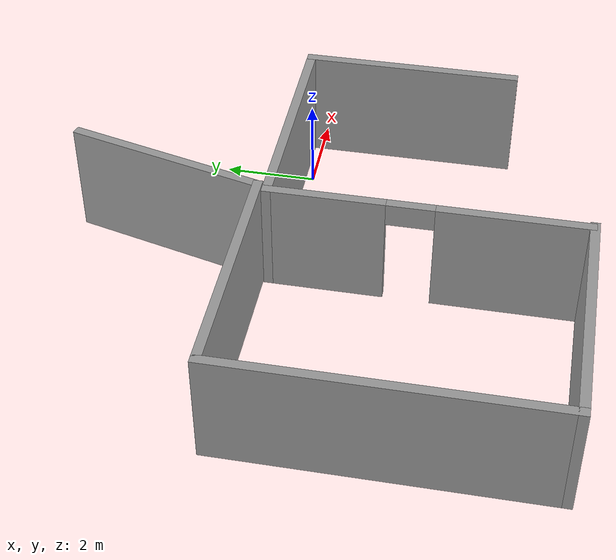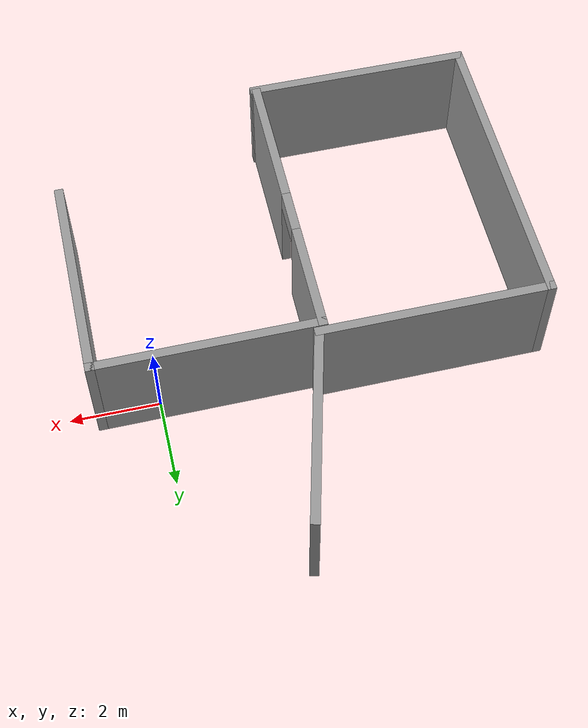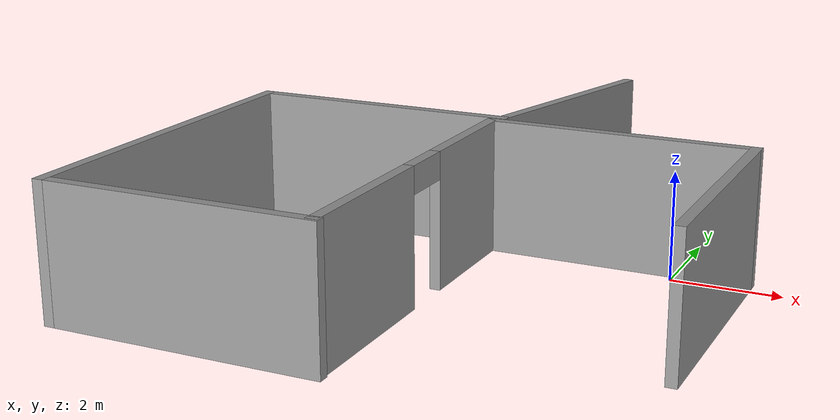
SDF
<?xml version='1.0'?>
<sdf version='1.4'>
  <model name='Test'>
    <link name='Wall_0'>
      <collision name='Wall_0_Collision'>
        <geometry>
          <box>
            <size>4.79304 0.2 2.5</size>
          </box>
        </geometry>
        <pose>0 0 1.25 0 -0 0</pose>
      </collision>
      <visual name='Wall_0_Visual'>
        <pose>0 0 1.25 0 -0 0</pose>
        <geometry>
          <box>
            <size>4.79304 0.2 2.5</size>
          </box>
        </geometry>
        <material>
          <script>
            <uri>file://media/materials/scripts/gazebo.material</uri>
            <name>Gazebo/Grey</name>
          </script>
        </material>
      </visual>
      <velocity_decay>
        <linear>0</linear>
        <angular>0</angular>
      </velocity_decay>
      <pose>1.31398 -2.03485 0 0 -0 1.5708</pose>
    </link>
    <link name='Wall_1'>
      <collision name='Wall_1_Collision'>
        <geometry>
          <box>
            <size>5.08201 0.2 2.5</size>
          </box>
        </geometry>
        <pose>0 0 1.25 0 -0 0</pose>
      </collision>
      <visual name='Wall_1_Visual'>
        <pose>0 0 1.25 0 -0 0</pose>
        <geometry>
          <box>
            <size>5.08201 0.2 2.5</size>
          </box>
        </geometry>
        <material>
          <script>
            <uri>file://media/materials/scripts/gazebo.material</uri>
            <name>Gazebo/Grey</name>
          </script>
        </material>
      </visual>
      <velocity_decay>
        <linear>0</linear>
        <angular>0</angular>
      </velocity_decay>
      <pose>-1.12703 0.26167 0 0 -0 3.14159</pose>
    </link>
    <link name='Wall_2'>
      <pose>-3.56803 -3.00427 0 0 0 -1.5708</pose>
      <visual name='Wall_2_Visual_0'>
        <pose>-2.09056 0 1.25 0 -0 0</pose>
        <geometry>
          <box>
            <size>2.55075 0.2 2.5</size>
          </box>
        </geometry>
        <material>
          <script>
            <uri>file://media/materials/scripts/gazebo.material</uri>
            <name>Gazebo/Grey</name>
          </script>
        </material>
      </visual>
      <collision name='Wall_2_Collision_0'>
        <geometry>
          <box>
            <size>2.55075 0.2 2.5</size>
          </box>
        </geometry>
        <pose>-2.09056 0 1.25 0 -0 0</pose>
      </collision>
      <visual name='Wall_2_Visual_1'>
        <pose>1.77538 0 1.25 0 -0 0</pose>
        <geometry>
          <box>
            <size>3.18113 0.2 2.5</size>
          </box>
        </geometry>
        <material>
          <script>
            <uri>file://media/materials/scripts/gazebo.material</uri>
            <name>Gazebo/Grey</name>
          </script>
        </material>
      </visual>
      <collision name='Wall_2_Collision_1'>
        <geometry>
          <box>
            <size>3.18113 0.2 2.5</size>
          </box>
        </geometry>
        <pose>1.77538 0 1.25 0 -0 0</pose>
      </collision>
      <visual name='Wall_2_Visual_2'>
        <pose>-0.315188 0 2.25 0 -0 0</pose>
        <geometry>
          <box>
            <size>1 0.2 0.5</size>
          </box>
        </geometry>
        <material>
          <script>
            <uri>file://media/materials/scripts/gazebo.material</uri>
            <name>Gazebo/Grey</name>
          </script>
        </material>
      </visual>
      <collision name='Wall_2_Collision_2'>
        <geometry>
          <box>
            <size>1 0.2 0.5</size>
          </box>
        </geometry>
        <pose>-0.315188 0 2.25 0 -0 0</pose>
      </collision>
    </link>
    <link name='Wall_4'>
      <collision name='Wall_4_Collision'>
        <geometry>
          <box>
            <size>5.15211 0.2 2.5</size>
          </box>
        </geometry>
        <pose>0 0 1.25 0 -0 0</pose>
      </collision>
      <visual name='Wall_4_Visual'>
        <pose>0 0 1.25 0 -0 0</pose>
        <geometry>
          <box>
            <size>5.15211 0.2 2.5</size>
          </box>
        </geometry>
        <material>
          <script>
            <uri>file://media/materials/scripts/gazebo.material</uri>
            <name>Gazebo/Grey</name>
          </script>
        </material>
      </visual>
      <velocity_decay>
        <linear>0</linear>
        <angular>0</angular>
      </velocity_decay>
      <pose>-6.00826 -6.33009 0 0 -0 3.14159</pose>
    </link>
    <link name='Wall_5'>
      <collision name='Wall_5_Collision'>
        <geometry>
          <box>
            <size>7.00915 0.2 2.5</size>
          </box>
        </geometry>
        <pose>0 0 1.25 0 -0 0</pose>
      </collision>
      <visual name='Wall_5_Visual'>
        <pose>0 0 1.25 0 -0 0</pose>
        <geometry>
          <box>
            <size>7.00915 0.2 2.5</size>
          </box>
        </geometry>
        <material>
          <script>
            <uri>file://media/materials/scripts/gazebo.material</uri>
            <name>Gazebo/Grey</name>
          </script>
        </material>
      </visual>
      <velocity_decay>
        <linear>0</linear>
        <angular>0</angular>
      </velocity_decay>
      <pose>-8.48432 -2.92551 0 0 -0 1.5708</pose>
    </link>
    <link name='Wall_6'>
      <collision name='Wall_6_Collision'>
        <geometry>
          <box>
            <size>5.23904 0.2 2.5</size>
          </box>
        </geometry>
        <pose>0 0 1.25 0 -0 0</pose>
      </collision>
      <visual name='Wall_6_Visual'>
        <pose>0 0 1.25 0 -0 0</pose>
        <geometry>
          <box>
            <size>5.23904 0.2 2.5</size>
          </box>
        </geometry>
        <material>
          <script>
            <uri>file://media/materials/scripts/gazebo.material</uri>
            <name>Gazebo/Grey</name>
          </script>
        </material>
      </visual>
      <velocity_decay>
        <linear>0</linear>
        <angular>0</angular>
      </velocity_decay>
      <pose>-5.9648 0.479063 0 0 -0 0</pose>
    </link>
    <link name='Wall_7'>
      <collision name='Wall_7_Collision'>
        <geometry>
          <box>
            <size>4.44361 0.2 2.5</size>
          </box>
        </geometry>
        <pose>0 0 1.25 0 -0 0</pose>
      </collision>
      <visual name='Wall_7_Visual'>
        <pose>0 0 1.25 0 -0 0</pose>
        <geometry>
          <box>
            <size>4.44361 0.2 2.5</size>
          </box>
        </geometry>
        <material>
          <script>
            <uri>file://media/materials/scripts/gazebo.material</uri>
            <name>Gazebo/Grey</name>
          </script>
        </material>
      </visual>
      <velocity_decay>
        <linear>0</linear>
        <angular>0</angular>
      </velocity_decay>
      <pose>-2.91338 2.53312 0 0 -0 1.31742</pose>
    </link>
    <static>1</static>
  </model>
</sdf>
